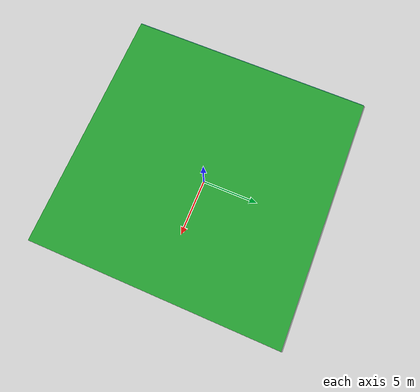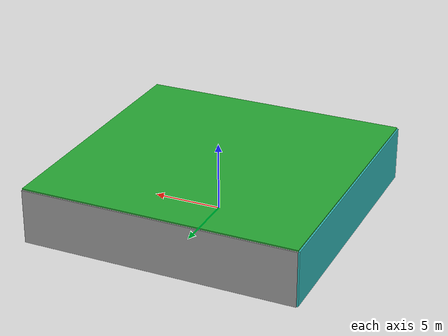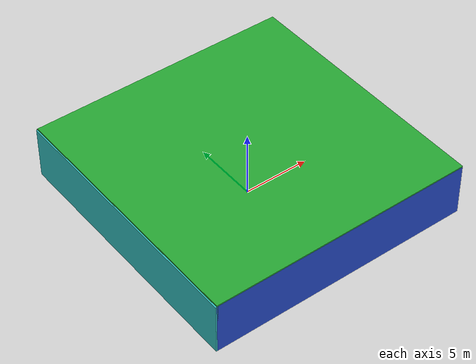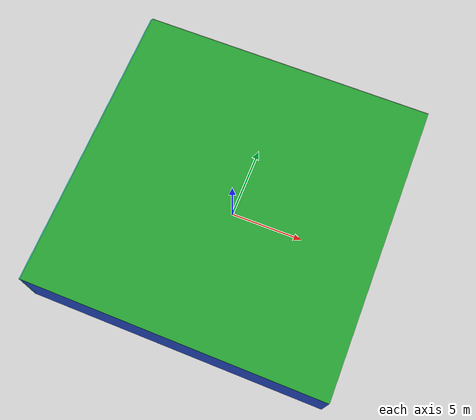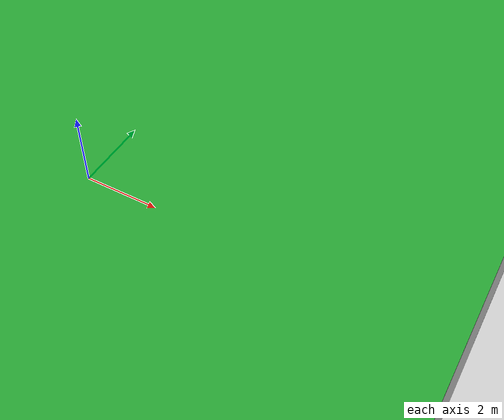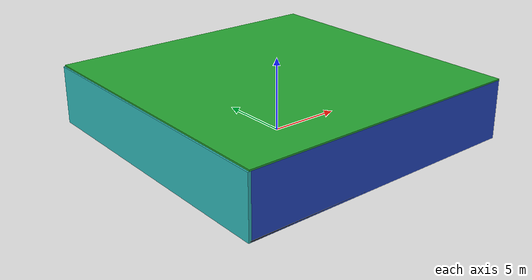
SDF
<sdf version="1.4">
 <world name="default">
  <physics type="ode">
   <max_step_size>0.001</max_step_size>
   <real_time_factor>1</real_time_factor>
   <real_time_update_rate>1000</real_time_update_rate>
   <gravity>0 0 -9.8</gravity>
  </physics>
  <scene><ambient>0.4 0.4 0.4 1</ambient><background>0.7 0.7 0.7 1</background><shadows>1</shadows></scene>
  <model name="Surrounding">
   <static>1</static>
   <link name="Ceiling">
    <collision name="Ceiling_Collision"><geometry><box><size>20 20 0.1</size></box></geometry></collision>
    <visual name="Ceiling_Visual">
     <geometry><box><size>20 20 0.1</size></box></geometry>
     <material>
      <script><uri>file://media/materials/scripts/gazebo.material</uri><name>Gazebo/GreenGlow</name></script>
     </material>
    </visual>
    <pose>0 0 4.05 0 0 0</pose>
   </link>
   <link name="Wall_South">
    <collision name="Wall_South_Collision">
     <geometry><box><size>20 0 4</size></box></geometry>
     <pose>0 0 2 0 -0 0</pose>
    </collision>
    <visual name="Wall_South_Visual">
     <pose>0 0 2 0 -0 0</pose>
     <geometry><box><size>20 0 4</size></box></geometry>
     <material>
      <script><uri>file://media/materials/scripts/gazebo.material</uri><name>Gazebo/BlueLaser</name></script>
     </material>
    </visual>
    <velocity_decay><linear>0</linear><angular>0</angular></velocity_decay>
    <pose>0 -10 0 0 -0 0</pose>
   </link>
   <link name="Wall_East">
    <collision name="Wall_21_Collision">
     <geometry><box><size>20 0 4</size></box></geometry>
     <pose>0 0 2 0 -0 0</pose>
    </collision>
    <visual name="Wall_21_Visual">
     <pose>0 0 2 0 -0 0</pose>
     <geometry><box><size>20 0 4</size></box></geometry>
     <material>
      <script><uri>file://media/materials/scripts/gazebo.material</uri><name>Gazebo/CloudySky</name></script>
     </material>
    </visual>
    <velocity_decay><linear>0</linear><angular>0</angular></velocity_decay>
    <pose>10 0 0 0 -0 1.5708</pose>
   </link>
   <link name="Wall_North">
    <collision name="Wall_22_Collision">
     <geometry><box><size>20 0.2 4</size></box></geometry>
     <pose>0 0 2 0 -0 0</pose>
    </collision>
    <visual name="Wall_22_Visual">
     <pose>0 0 2 0 -0 0</pose>
     <geometry><box><size>20 0.2 4</size></box></geometry>
     <material>
      <script><uri>file://media/materials/scripts/gazebo.material</uri><name>Gazebo/Grey</name></script>
     </material>
    </visual>
    <velocity_decay><linear>0</linear><angular>0</angular></velocity_decay>
    <pose>0 10 0 0 -0 0</pose>
   </link>
   <link name="Wall_West">
    <collision name="Wall_23_Collision">
     <geometry><box><size>20 0.2 4</size></box></geometry>
     <pose>0 0 2 0 -0 0</pose>
    </collision>
    <visual name="Wall_23_Visual">
     <pose>0 0 2 0 -0 0</pose>
     <geometry><box><size>20 0.2 4</size></box></geometry>
     <material>
      <script><uri>file://media/materials/scripts/gazebo.material</uri><name>Gazebo/Turquoise</name></script>
     </material>
    </visual>
    <velocity_decay><linear>0</linear><angular>0</angular></velocity_decay>
    <pose>-10 0 0 0 0 -1.5708</pose>
   </link>
   <link name="Ground_link">
    <collision name="collision">
     <pose>0 0 .05 0 -0 0</pose>
     <geometry><box><size>20 20 0.1</size></box></geometry>
    </collision>
    <visual name="visual">
     <pose>0 0 .05 0 -0 0</pose>
     <geometry><box><size>20 20 0.1</size></box></geometry>
     <material>
      <script><uri>file://media/materials/scripts/gazebo.material</uri><name>Gazebo/Black</name></script>
     </material>
    </visual>
   </link>
   <static>1</static>
  </model>
  <spherical_coordinates>
   <surface_model>EARTH_WGS84</surface_model>
   <latitude_deg>0</latitude_deg>
   <longitude_deg>0</longitude_deg>
   <elevation>0</elevation>
   <heading_deg>0</heading_deg>
  </spherical_coordinates>
  <light name="lightball_0" type="diffuse">
   <diffuse>0.8 0.8 0.8 1</diffuse>
   <specular>0.2 0.2 0.2 1</specular>
   <attenuation>
    <range>100</range>
    <constant>0.7</constant>
    <linear>0.01</linear>
    <quadratic>0.001</quadratic>
   </attenuation>
   <direction>-0.5 0.1 -0.9</direction>
   <pose>5.29499654175 2.07168946229 1.66582155746 0 0 0</pose>
  </light>
  <include>
   <uri>model://construction_cone</uri>
   <pose>-0.706512334007 -5.00644886191 0 0 0 2.1769952262</pose>
  </include>
  <include>
   <uri>model://textured_shapes</uri>
   <pose>2.28948879836 1.2534568897 0 0 0 2.2342525291</pose>
  </include>
  <include><uri>model://cabinet</uri><pose>1.03096536846 5.095106642 0 0 0 3.07826586199</pose></include>
  <include>
   <uri>model://construction_cone</uri>
   <pose>1.07834318627 8.0179068113 0 0 0 2.82648854077</pose>
  </include>
  <include><uri>model://cabinet</uri><pose>3.90086188652 1.90319107151 0 0 0 0.671463812988</pose></include>
  <include><uri>model://table</uri><pose>3.82308459552 6.75507980205 0 0 0 0.793781888456</pose></include>
 </world>
</sdf>

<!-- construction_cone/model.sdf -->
<sdf version="1.5">
  <model name="Construction Cone">
    <link name="link">
      <collision name="collision">
        <geometry>
          <mesh>
            <scale>10 10 10</scale>
            <uri>file://isr-testbed/construction_cone/meshes/construction_cone.dae</uri>
          </mesh>
        </geometry>
      </collision>
      <visual name="visual">
        <geometry>
          <mesh>
            <scale>10 10 10</scale>
            <uri>file://isr-testbed/construction_cone/meshes/construction_cone.dae</uri>
          </mesh>
        </geometry>
      </visual>
    </link>
  </model>
</sdf>

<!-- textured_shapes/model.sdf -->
<sdf version="1.6">
  <model name="textured_shapes">
    <pose>0 0 0.5 0 0 0</pose>
    <link name="box">
      <pose>0 -1.5 0 0 0 0</pose>
      <collision name="collision">
        <geometry>
          <box>
            <size>1 1 1</size>
          </box>
        </geometry>
      </collision>
      <visual name="visual">
        <geometry>
          <box>
            <size>1 1 1</size>
          </box>
        </geometry>
        <material>
          <script>
            <uri>model://../model_source/models/textured_shapes/materials/scripts</uri>
            <uri>model://../model_source/models/textured_shapes/materials/textures</uri>
            <name>TexturedShape/Squares</name>
          </script>
        </material>
      </visual>
    </link>
    <link name="sphere">
      <collision name="collision">
        <geometry>
          <sphere>
            <radius>0.5</radius>
          </sphere>
        </geometry>
      </collision>
      <visual name="visual">
        <geometry>
          <sphere>
            <radius>0.5</radius>
          </sphere>
        </geometry>
        <material>
          <script>
            <uri>model://../model_source/models/textured_shapes/materials/scripts</uri>
            <uri>model://../model_source/models/textured_shapes/materials/textures</uri>
            <name>TexturedShape/Squares</name>
          </script>
        </material>
      </visual>
    </link>
    <link name="cylinder">
      <pose>0 1.5 0 0 0 0</pose>
      <collision name="collision">
        <geometry>
          <cylinder>
            <radius>0.5</radius>
            <length>1</length>
          </cylinder>
        </geometry>
      </collision>
      <visual name="visual">
        <geometry>
          <cylinder>
            <radius>0.5</radius>
            <length>1</length>
          </cylinder>
        </geometry>
        <material>
          <script>
            <uri>model://../model_source/models/textured_shapes/materials/scripts</uri>
            <uri>model://../model_source/models/textured_shapes/materials/textures</uri>
            <name>TexturedShape/Squares</name>
          </script>
        </material>
      </visual>
    </link>
  </model>
</sdf>

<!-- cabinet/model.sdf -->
<sdf version="1.5">
  <model name="cabinet">
    <static>true</static>
    <link name="cabinet_bottom_plate">
      <inertial>
        <pose>0 0 -1 0 0 0</pose>
        <inertia>
          <ixx>2.050000</ixx>
          <ixy>0</ixy>
          <ixz>0</ixz>
          <iyy>2.050000</iyy>
          <iyz>0</iyz>
          <izz>2.050000</izz>
        </inertia>
        <mass>25.000000</mass>
      </inertial>
      <collision name="cabinet_bottom_plate_geom">
        <pose>0 0 0.010000 0 0 0</pose>
        <geometry>
          <box>
            <size>0.450000 0.450000 0.020000</size>
          </box>
        </geometry>
      </collision>
      <visual name="cabinet_bottom_plate_geom_visual">
        <pose>0 0 0.010000 0 0 0</pose>
        <geometry>
          <box>
            <size>0.450000 0.450000 0.020000</size>
          </box>
        </geometry>
        <material>
          <script>
            <uri>model://media/materials/scripts/gazebo.material</uri>
            <name>Gazebo/Wood</name>
          </script>
        </material>
      </visual>
      <collision name="cabinet_bottom_plate_geom_cabinet_back_plate">
        <pose>0.235000 0 0.510000 0 0 0</pose>
        <geometry>
          <box>
            <size>0.020000 0.450000 1.020000</size>
          </box>
        </geometry>
      </collision>
      <visual name="cabinet_bottom_plate_geom_cabinet_back_plate_visual">
        <pose>0.235000 0 0.510000 0 0 0</pose>
        <geometry>
          <box>
            <size>0.020000 0.450000 1.020000</size>
          </box>
        </geometry>
        <material>
          <script>
            <uri>model://media/materials/scripts/gazebo.material</uri>
            <name>Gazebo/Wood</name>
          </script>
        </material>
      </visual>
      <collision name="cabinet_bottom_plate_geom_cabinet_left_plate">
        <pose>0 0.235000 0.510000 0 0 0</pose>
        <geometry>
          <box>
            <size>0.450000 0.020000 1.020000</size>
          </box>
        </geometry>
      </collision>
      <visual name="cabinet_bottom_plate_geom_cabinet_left_plate_visual">
        <pose>0 0.235000 0.510000 0 0 0</pose>
        <geometry>
          <box>
            <size>0.450000 0.020000 1.020000</size>
          </box>
        </geometry>
        <material>
          <script>
            <uri>model://media/materials/scripts/gazebo.material</uri>
            <name>Gazebo/Wood</name>
          </script>
        </material>
      </visual>
      <collision name="cabinet_bottom_plate_geom_cabinet_middle_plate">
        <pose>0 0 0.510000 0 0 0</pose>
        <geometry>
          <box>
            <size>0.450000 0.450000 0.020000</size>
          </box>
        </geometry>
      </collision>
      <visual name="cabinet_bottom_plate_geom_cabinet_middle_plate_visual">
        <pose>0 0 0.510000 0 0 0</pose>
        <geometry>
          <box>
            <size>0.450000 0.450000 0.020000</size>
          </box>
        </geometry>
        <material>
          <script>
            <uri>model://media/materials/scripts/gazebo.material</uri>
            <name>Gazebo/Wood</name>
          </script>
        </material>
      </visual>
      <collision name="cabinet_bottom_plate_geom_cabinet_right_plate">
        <pose>0 -0.235000 0.510000 0 0 0</pose>
        <geometry>
          <box>
            <size>0.450000 0.020000 1.020000</size>
          </box>
        </geometry>
      </collision>
      <visual name="cabinet_bottom_plate_geom_cabinet_right_plate_visual">
        <pose>0 -0.235000 0.510000 0 0 0</pose>
        <geometry>
          <box>
            <size>0.450000 0.020000 1.020000</size>
          </box>
        </geometry>
        <material>
          <script>
            <uri>model://media/materials/scripts/gazebo.material</uri>
            <name>Gazebo/Wood</name>
          </script>
        </material>
      </visual>
      <collision name="cabinet_bottom_plate_geom_cabinet_top_plate">
        <pose>0 0 1.010000 0 0 0</pose>
        <geometry>
          <box>
            <size>0.450000 0.450000 0.020000</size>
          </box>
        </geometry>
      </collision>
      <visual name="cabinet_bottom_plate_geom_cabinet_top_plate_visual">
        <pose>0 0 1.010000 0 0 0</pose>
        <geometry>
          <box>
            <size>0.450000 0.450000 0.020000</size>
          </box>
        </geometry>
        <material>
          <script>
            <uri>model://media/materials/scripts/gazebo.material</uri>
            <name>Gazebo/Wood</name>
          </script>
        </material>
      </visual>
    </link>
  </model>
</sdf>

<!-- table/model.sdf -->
<sdf version="1.5">
  <model name="table">
    <static>true</static>
    <link name="link">
      <collision name="surface">
        <pose>0 0 1.0 0 0 0</pose>
        <geometry>
          <box>
            <size>1.5 0.8 0.03</size>
          </box>
        </geometry>
        <surface>
          <friction>
            <ode>
              <mu>0.6</mu>
              <mu2>0.6</mu2>
            </ode>
          </friction>
        </surface>
      </collision>
      <visual name="visual1">
        <pose>0 0 1.0 0 0 0</pose>
        <geometry>
          <box>
            <size>1.5 0.8 0.03</size>
          </box>
        </geometry>
        <material>
          <script>
            <uri>model://media/materials/scripts/gazebo.material</uri>
            <name>Gazebo/Wood</name>
          </script>
        </material>
      </visual>
      <collision name="front_left_leg">
        <pose>0.68 0.38 0.5 0 0 0</pose>
        <geometry>
          <cylinder>
            <radius>0.02</radius>
            <length>1.0</length>
          </cylinder>
        </geometry>
      </collision>
      <visual name="front_left_leg">
        <pose>0.68 0.38 0.5 0 0 0</pose>
        <geometry>
          <cylinder>
            <radius>0.02</radius>
            <length>1.0</length>
          </cylinder>
        </geometry>
        <material>
          <script>
            <uri>model://media/materials/scripts/gazebo.material</uri>
            <name>Gazebo/Grey</name>
          </script>
        </material>
      </visual>
      <collision name="front_right_leg">
        <pose>0.68 -0.38 0.5 0 0 0</pose>
        <geometry>
          <cylinder>
            <radius>0.02</radius>
            <length>1.0</length>
          </cylinder>
        </geometry>
      </collision>
      <visual name="front_right_leg">
        <pose>0.68 -0.38 0.5 0 0 0</pose>
        <geometry>
          <cylinder>
            <radius>0.02</radius>
            <length>1.0</length>
          </cylinder>
        </geometry>
        <material>
          <script>
            <uri>model://media/materials/scripts/gazebo.material</uri>
            <name>Gazebo/Grey</name>
          </script>
        </material>
      </visual>
      <collision name="back_right_leg">
        <pose>-0.68 -0.38 0.5 0 0 0</pose>
        <geometry>
          <cylinder>
            <radius>0.02</radius>
            <length>1.0</length>
          </cylinder>
        </geometry>
      </collision>
      <visual name="back_right_leg">
        <pose>-0.68 -0.38 0.5 0 0 0</pose>
        <geometry>
          <cylinder>
            <radius>0.02</radius>
            <length>1.0</length>
          </cylinder>
        </geometry>
        <material>
          <script>
            <uri>model://media/materials/scripts/gazebo.material</uri>
            <name>Gazebo/Grey</name>
          </script>
        </material>
      </visual>
      <collision name="back_left_leg">
        <pose>-0.68 0.38 0.5 0 0 0</pose>
        <geometry>
          <cylinder>
            <radius>0.02</radius>
            <length>1.0</length>
          </cylinder>
        </geometry>
      </collision>
      <visual name="back_left_leg">
        <pose>-0.68 0.38 0.5 0 0 0</pose>
        <geometry>
          <cylinder>
            <radius>0.02</radius>
            <length>1.0</length>
          </cylinder>
        </geometry>
        <material>
          <script>
            <uri>model://media/materials/scripts/gazebo.material</uri>
            <name>Gazebo/Grey</name>
          </script>
        </material>
      </visual>
    </link>
  </model>
</sdf>
